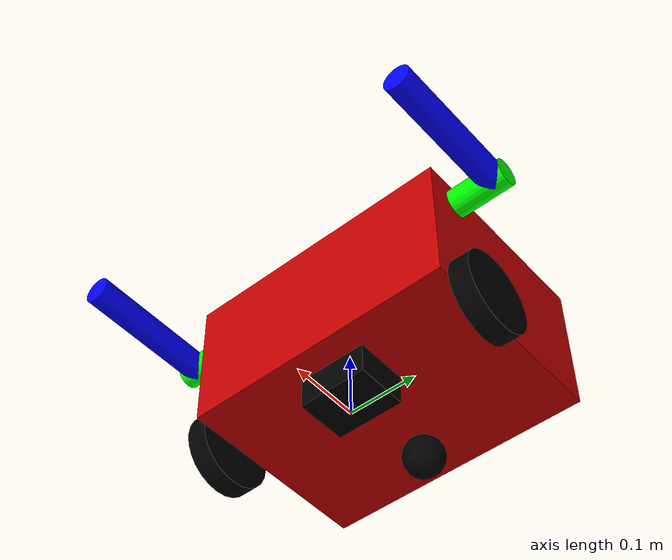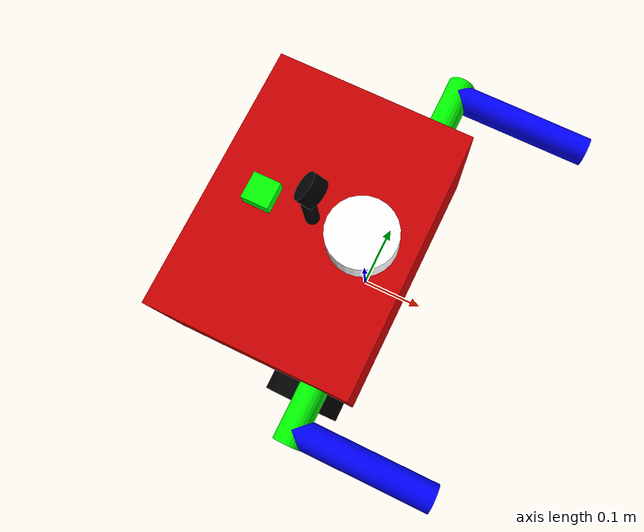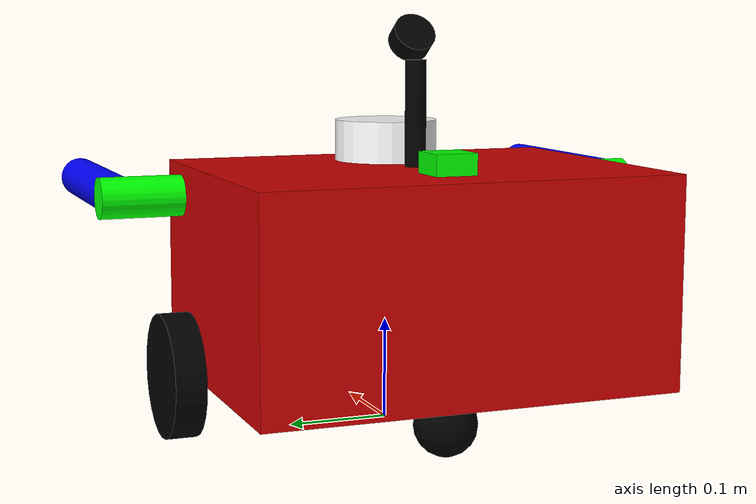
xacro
<?xml version="1.0"?>
<robot name="ddrive_robot" xmlns:xacro="http://ros.org/wiki/xacro">

  <xacro:arg name="namespace" default="" />
  <xacro:arg name="battery_x_factor" default="1.0" />

  <xacro:include filename="$(find marrtino_gazebo)/urdf/marrtino_base.urdf.xacro" />

  <xacro:property name="wheel_r" value="0.06" />
  <xacro:property name="wheel_max_velocity" value="${1 / wheel_r}" /> <!-- 1/r rad/s -> 1 m/s -->

  <xacro:property name="arm_lower_limit" value="${-5*pi/4}" />
  <xacro:property name="arm_upper_limit" value="${pi/4}" />
  <xacro:property name="arm_max_effort" value="100" />
  <xacro:property name="arm_max_velocity" value="1.0" />

  <xacro:marrtino_base battery_x_factor="$(arg battery_x_factor)" />

  <xacro:marrtino_sensors />

  <xacro:marrtino_arms />

  <gazebo>
    <!-- Joint state publisher -->
    <plugin filename="gz_ros2_control-system" name="gz_ros2_control::GazeboSimROS2ControlPlugin">
      <ros>
        <namespace>$(arg namespace)</namespace>
      </ros>
      <parameters>$(find gz_ros2_control_demos)/config/diff_drive_controller.yaml</parameters>
    </plugin>

    <plugin filename="gz-sim-imu-system"
      name="gz::sim::systems::Imu">
    </plugin>
    <plugin
        filename="gz-sim-pose-publisher-system"
        name="gz::sim::systems::PosePublisher">
        <use_pose_vector_msg>false</use_pose_vector_msg>
        <publish_model_pose>true</publish_model_pose>
        <publish_nested_model_pose>true</publish_nested_model_pose>
    </plugin>

  </gazebo>

  <gazebo reference="imu_link">
    <sensor name="imu" type="imu">
      <always_on>1</always_on>
      <update_rate>10</update_rate>
      <visualize>true</visualize>
      <topic>imu</topic>
      <enable_metrics>true</enable_metrics>
    </sensor>
  </gazebo>

  <gazebo reference="lidar_link">
    <sensor name="lidar" type="gpu_lidar">
      <pose relative_to='lidar_link'>0 0 0.05 0 0 0</pose>
      <always_on>1</always_on>
      <update_rate>10</update_rate>
      <visualize>true</visualize>
      <topic>scan</topic>
      <gz_frame_id>lidar_link</gz_frame_id>  <!-- ignore warning not defined in SDF -->
      <ray>
        <scan>
            <horizontal>
                <samples>640</samples>
                <resolution>1</resolution>
                <min_angle>${-pi*5/8}</min_angle>
                <max_angle>${pi*5/8}</max_angle>
            </horizontal>
            <vertical>
                <samples>1</samples>
                <resolution>0.01</resolution>
                <min_angle>0</min_angle>
                <max_angle>0</max_angle>
            </vertical>
        </scan>
        <range>
            <min>0.05</min>
            <max>10.0</max>
            <resolution>0.01</resolution>
        </range>
      </ray>
    </sensor>
  </gazebo>

  <gazebo reference="camera_optical_link">
    <sensor name="camera" type="camera">
      <camera>
        <horizontal_fov>2.0</horizontal_fov>
        <image>
          <width>640</width>
          <height>480</height>
          <format>R8G8B8</format>
        </image>
        <clip>
          <near>0.001</near>
          <far>15</far>
        </clip>
        <noise>
          <type>gaussian</type>
          <!-- Noise is sampled independently per pixel on each frame.
               That pixel's noise value is added to each of its color
               channels, which at that point lie in the range [0,1]. -->
          <mean>0.0</mean>
          <stddev>0.007</stddev>
        </noise>
        <camera_info_topic>camera/camera_info</camera_info_topic>
      </camera>
      <always_on>1</always_on>
      <update_rate>10</update_rate>
      <visualize>true</visualize>
      <topic>camera/image</topic>
    </sensor>
  </gazebo>

  <ros2_control name="GazeboSimSystem" type="system">
    <hardware>
      <plugin>gz_ros2_control/GazeboSimSystem</plugin>
    </hardware>
    <joint name="left_wheel_joint">
      <command_interface name="velocity">
        <param name="min">${-wheel_max_velocity}</param>
        <param name="max">${wheel_max_velocity}</param>
      </command_interface>
      <state_interface name="position"/>
      <state_interface name="velocity"/>
    </joint>
    <joint name="right_wheel_joint">
      <command_interface name="velocity">
        <param name="min">${-wheel_max_velocity}</param>
        <param name="max">${wheel_max_velocity}</param>
      </command_interface>
      <state_interface name="position"/>
      <state_interface name="velocity"/>
    </joint>
    <joint name="left_arm_joint">
      <command_interface name="effort">
        <param name="min">${-arm_max_effort}</param>
        <param name="max">${arm_max_effort}</param>
      </command_interface>
      <command_interface name="velocity">
        <param name="min">${-arm_max_velocity}</param>
        <param name="max">${arm_max_velocity}</param>
      </command_interface>
      <command_interface name="position">
        <param name="min">${arm_lower_limit}</param>
        <param name="max">${arm_upper_limit}</param>
      </command_interface>
      <state_interface name="position"/>
      <state_interface name="velocity"/>
    </joint>
    <joint name="right_arm_joint">
      <command_interface name="effort">
        <param name="min">${-arm_max_effort}</param>
        <param name="max">${arm_max_effort}</param>
      </command_interface>
      <command_interface name="velocity">
        <param name="min">${-arm_max_velocity}</param>
        <param name="max">${arm_max_velocity}</param>
      </command_interface>
      <command_interface name="position">
        <param name="min">${arm_lower_limit}</param>
        <param name="max">${arm_upper_limit}</param>
      </command_interface>
      <state_interface name="position"/>
      <state_interface name="velocity"/>
    </joint>
  </ros2_control>

</robot>

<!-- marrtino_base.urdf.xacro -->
<robot xmlns:xacro="http://ros.org/wiki/xacro">

  <xacro:arg name="namespace" default="" />

  <material name="orange"><color rgba="1.0 0.33 0.0 1.0"/></material>
  <material name="red"><color rgba="0.8 0 0 1"/></material>
  <material name="green"><color rgba="0 1 0 1"/></material>
  <material name="blue"><color rgba="0 0 1 1"/></material>
  <material name="black"><color rgba="0 0 0 1.0"/></material>
  <material name="grey"><color rgba="0.7 0.7 0.7 1.0"/></material>
  <material name="white"><color rgba="1 1 1 1.0"/></material>

  <xacro:include filename="$(find marrtino_gazebo)/urdf/inertia.xacro" />

  <xacro:property name="base_w" value="0.40" />
  <xacro:property name="base_l" value="0.30" />
  <xacro:property name="base_h" value="0.20" />

  <xacro:macro name="marrtino_base" params="battery_x_factor">

      <xacro:property name="wheel_l" value="0.03" />

      <xacro:property name="wheel_friction" value="0.01" />
      <xacro:property name="wheel_damping" value="0.05" />
      <xacro:property name="wheel_max_effort" value="100.0" />

      <xacro:property name="battery_x" value="${battery_x_factor*base_l/4}" />

      <link name="base_footprint" />

      <link name="base_link">
        <visual>
            <geometry>
                <box size="${base_l} ${base_w} ${base_h}"/>
            </geometry>
            <origin xyz="0.0 0.0 0.0" rpy="0.0 0.0 0.0"/>
            <material name="red"/>
        </visual>
        <collision>
            <geometry>
                <box size="${base_l} ${base_w} ${base_h}"/>
            </geometry>
            <origin xyz="0.0 0.0 0.0" rpy="0.0 0.0 0.0"/>
        </collision>
        <xacro:box_inertial mass="0.2" x_dim="${base_l}" y_dim="${base_w}" z_dim="${base_h}"/>
      </link>

      <!-- to balance weight on the bottom and between the wheels -->
      <link name="battery_link">
        <visual>
            <geometry>
                <box size="${base_l/4} ${base_w/4} ${base_h/4}"/>
            </geometry>
            <origin xyz="0.0 0.0 0.0" rpy="0.0 0.0 0.0"/>
            <material name="black"/>
        </visual>
        <collision>
            <geometry>
                <box size="${base_l/4} ${base_w/4} ${base_h/4}"/>
            </geometry>
            <origin xyz="0.0 0.0 0.0" rpy="0.0 0.0 0.0"/>
        </collision>
        <xacro:box_inertial mass="0.3" x_dim="${base_l/4}" y_dim="${base_w/4}" z_dim="${base_h/4}"/>
      </link>

      <link name="left_wheel">
        <visual>
            <geometry>
                <cylinder radius="${wheel_r}" length="${wheel_l}"/>
            </geometry>
            <origin xyz="0.0 0.0 0.0" rpy="1.57 0.0 0.0"/>
            <material name="black"/>
        </visual>
        <collision>
            <geometry>
                <cylinder radius="${wheel_r}" length="${wheel_l}"/>
            </geometry>
            <origin xyz="0.0 0.0 0.0" rpy="1.57 0.0 0.0"/>
            <surface>
              <friction>
                <ode>
                  <mu>1.0</mu>
                  <mu2>1.0</mu2>
                </ode>
                <torsional>
                  <ode/>
                </torsional>
              </friction>
            </surface>
        </collision>
        <xacro:cylinder_inertial mass="0.3" radius="${wheel_r}" length="${wheel_l}"/>
      </link>

      <link name="right_wheel">
        <visual>
            <geometry>
                <cylinder radius="${wheel_r}" length="${wheel_l}"/>
            </geometry>
            <origin xyz="0.0 0.0 0.0" rpy="1.57 0.0 0.0"/>
            <material name="black"/>
        </visual>
        <collision>
            <geometry>
                <cylinder radius="${wheel_r}" length="${wheel_l}"/>
            </geometry>
            <origin xyz="0.0 0.0 0.0" rpy="1.57 0.0 0.0"/>
            <surface>
              <friction>
                <ode>
                  <mu>1.0</mu>
                  <mu2>1.0</mu2>
                </ode>
                <torsional>
                  <ode/>
                </torsional>
              </friction>
            </surface>
        </collision>
        <xacro:cylinder_inertial mass="0.3" radius="${wheel_r}" length="${wheel_l}"/>
      </link>

      <link name="caster_wheel">
        <visual>
            <geometry>
                <sphere radius="${wheel_r/2}"/>
            </geometry>
            <origin xyz="0.0 0.0 0.0" rpy="0.0 0.0 0.0"/>
            <material name="black"/>
        </visual>
        <collision>
            <geometry>
                <sphere radius="${wheel_r/2}"/>
            </geometry>
            <origin xyz="0.0 0.0 0.0" rpy="0.0 0.0 0.0"/>
            <surface>
              <friction>
                <ode>
                  <mu>0.001</mu>
                  <mu2>0.001</mu2>
                </ode>
                <torsional>
                  <ode/>
                </torsional>
              </friction>
            </surface>
        </collision>
        <xacro:sphere_inertial mass="0.1" radius="${wheel_r/2}" />
      </link>

      <joint name="base_joint" type="fixed">
        <parent link="base_footprint"/>
        <child link="base_link"/>
        <origin xyz="${-base_l/4} 0.0 ${base_h/2+wheel_r}" rpy="0.0 0.0 0.0"/>
      </joint>

      <joint name="battery_joint" type="fixed">
        <parent link="base_link"/>
        <child link="battery_link"/>
        <origin xyz="${battery_x} 0.0 ${-wheel_r*2}" rpy="0.0 0.0 0.0"/>
      </joint>

      <joint name="left_wheel_joint" type="continuous">
        <parent link="base_link"/>
        <child link="left_wheel"/>
        <origin xyz="${base_l/4} ${base_w/2+wheel_l/2} ${-base_h/2}" rpy="0 0.0 0.0"/>
        <axis xyz="0.0 1.0 0.0"/>
        <dynamics damping="${wheel_damping}" friction="${wheel_friction}"/>
        <limit effort="${wheel_max_effort}" velocity="${wheel_max_velocity}"/>
      </joint>

      <joint name="right_wheel_joint" type="continuous">
        <parent link="base_link"/>
        <child link="right_wheel"/>
        <origin xyz="${base_l/4} ${-base_w/2-wheel_l/2} ${-base_h/2}" rpy="0 0.0 0.0"/>
        <axis xyz="0.0 1.0 0.0"/>
        <dynamics damping="${wheel_damping}" friction="${wheel_friction}"/>
        <limit effort="${wheel_max_effort}" velocity="${wheel_max_velocity}"/>
      </joint>

      <joint name="caster_wheel_joint" type="fixed">
        <parent link="base_link"/>
        <child link="caster_wheel"/>
        <origin xyz="${-base_l/4} 0.0 ${-base_h/2-wheel_r/2}" rpy="0.0 0.0 0.0"/>
      </joint>

  </xacro:macro>

  <xacro:macro name="marrtino_sensors">

      <link name="imu_link">
        <visual>
          <origin rpy="0 0 0" xyz="0 0 0.0"/>
          <geometry>
            <box size="0.04 0.04 0.02"/>
          </geometry>
          <material name="green"/>
        </visual>
      </link>

      <link name="camera_optical_link" />

      <link name="camera_link">
        <visual>
          <origin xyz="0 0 0.05" rpy="0 0 0" />
          <geometry>
            <cylinder radius="0.01" length="0.10"/>
          </geometry>
          <material name="black"/>
        </visual>
        <visual>
          <origin xyz="0.01 0 ${0.10+0.02}" rpy="0 ${pi/2+0.6} 0" />
          <geometry>
            <cylinder radius="0.02" length="0.02"/>
          </geometry>
          <material name="black"/>
        </visual>
      </link>

      <link name="lidar_link">
        <visual>
            <geometry>
                <cylinder radius="0.05" length="0.04"/>
            </geometry>
            <origin xyz="0.0 0.0 0.0" rpy="0.0 0.0 0.0"/>
            <material name="white"/>
        </visual>
      </link>

      <joint name="imu_joint" type="fixed">
        <parent link="base_link"/>
        <child link="imu_link"/>
        <origin xyz="${-base_l/4} 0.0 ${base_h/2+0.01}" rpy="0.0 0.0 0.0"/>
      </joint>

      <joint name="camera_joint" type="fixed">
        <parent link="base_link"/>
        <child link="camera_link"/>
        <origin xyz="0 0.0 ${base_h/2}" rpy="0.0 0.0 0.0"/>
      </joint>

      <joint name="camera_optical_joint" type="fixed">
        <parent link="camera_link"/>
        <child link="camera_optical_link"/>
        <origin xyz="0.02 0 ${0.10+0.02}" rpy="0 0.6 0"/>
      </joint>

      <joint name="base_lidar_joint" type="fixed">
        <parent link="base_link"/>
        <child link="lidar_link"/>
        <origin xyz="${base_l/4} 0.0 ${base_h/2+0.02}" rpy="0.0 0.0 0.0"/>
      </joint>

  </xacro:macro>

  <xacro:macro name="marrtino_arms">

      <xacro:property name="arm_radius" value="0.02" />
      <xacro:property name="arm_length" value="0.2" />
      <xacro:property name="arm_mass" value="0.05" />

      <xacro:property name="arm_friction" value="0.01" />
      <xacro:property name="arm_damping" value="0.02" />

      <link name="left_arm_body">
        <visual>
            <geometry>
                <cylinder radius="${arm_radius}" length="${2*arm_radius+0.04}"/>
            </geometry>
            <origin xyz="0.0 0.0 0.0" rpy="${pi/2} 0.0 0.0"/>
            <material name="green"/>
        </visual>
        <collision>
            <geometry>
                <cylinder radius="${arm_radius}" length="0.01"/>
            </geometry>
            <origin xyz="0.0 0.0 0.0" rpy="${pi/2} 0.0 0.0"/>
        </collision>
        <xacro:cylinder_inertial mass="${arm_mass/10}" radius="${arm_radius}" length="0.01"/>
      </link>

      <link name="left_arm">
        <visual>
            <geometry>
                <cylinder radius="${arm_radius}" length="${arm_length}"/>
            </geometry>
            <origin xyz="0.0 0.0 0.0" rpy="0.0 ${pi/2} 0.0"/>
            <material name="blue"/>
        </visual>
        <collision>
            <geometry>
                <cylinder radius="${arm_radius}" length="${arm_length}"/>
            </geometry>
            <origin xyz="0.0 0.0 0.0" rpy="0.0 ${pi/2} 0.0"/>
        </collision>
        <xacro:cylinder_inertial mass="${arm_mass}" radius="${arm_radius}" length="${arm_length}"/>
      </link>

      <link name="right_arm_body">
        <visual>
            <geometry>
                <cylinder radius="${arm_radius}" length="${2*arm_radius+0.04}"/>
            </geometry>
            <origin xyz="0.0 0.0 0.0" rpy="${pi/2} 0.0 0.0"/>
            <material name="green"/>
        </visual>
        <collision>
            <geometry>
                <cylinder radius="${arm_radius}" length="0.01"/>
            </geometry>
            <origin xyz="0.0 0.0 0.0" rpy="${pi/2} 0.0 0.0"/>
        </collision>
        <xacro:cylinder_inertial mass="${arm_mass/10}" radius="${arm_radius}" length="0.01"/>
      </link>

      <link name="right_arm">
        <visual>
            <geometry>
                <cylinder radius="${arm_radius}" length="${arm_length}"/>
            </geometry>
            <origin xyz="0.0 0.0 0.0" rpy="0.0 ${pi/2} 0.0"/>
            <material name="blue"/>
        </visual>
        <collision>
            <geometry>
                <cylinder radius="${arm_radius}" length="${arm_length}"/>
            </geometry>
            <origin xyz="0.0 0.0 0.0" rpy="0.0 ${pi/2} 0.0"/>
        </collision>
        <xacro:cylinder_inertial mass="${arm_mass}" radius="${arm_radius}" length="${arm_length}"/>
      </link>

      <joint name="left_arm_joint" type="revolute">
        <parent link="base_link"/>
        <child link="left_arm_body"/>
        <origin xyz="0.1 ${0.221+arm_radius} 0.07" rpy="0 0 0"/>
        <axis xyz="0.0 1.0 0.0"/>
        <dynamics friction="${arm_friction}" damping="${arm_damping}" />
        <limit lower="${arm_lower_limit}" upper="${arm_upper_limit}"
            effort="${arm_max_effort}" velocity="${arm_max_velocity}"/>
      </joint>

      <joint name="left_arm_body_joint" type="fixed">
        <parent link="left_arm_body"/>
        <child link="left_arm"/>
        <origin xyz="${arm_length/2} 0.02 0.0" rpy="0 0.0 0.0"/>
      </joint>

      <joint name="right_arm_joint" type="revolute">
        <parent link="base_link"/>
        <child link="right_arm_body"/>
        <origin xyz="0.1 ${-(0.221+arm_radius)} 0.07" rpy="0 0 0"/>
        <axis xyz="0.0 1.0 0.0"/>
        <dynamics friction="${arm_friction}" damping="${arm_damping}" />
        <limit lower="${arm_lower_limit}" upper="${arm_upper_limit}"
            effort="${arm_max_effort}" velocity="${arm_max_velocity}"/>
      </joint>

      <joint name="right_arm_body_joint" type="fixed">
        <parent link="right_arm_body"/>
        <child link="right_arm"/>
        <origin xyz="${arm_length/2} -0.02 0.0" rpy="0 0.0 0.0"/>
      </joint>

  </xacro:macro>

</robot>

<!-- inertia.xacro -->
<robot xmlns:xacro="http://ros.org/wiki/xacro">

  <xacro:macro name="sphere_inertial" params="mass radius">
    <inertial>
      <origin xyz="0 0 0" rpy="0 0 0"/> <mass value="${mass}"/>
      <inertia
        ixx="${(2/5) * mass * (radius*radius)}"
        ixy="0.0"
        ixz="0.0"
        iyy="${(2/5) * mass * (radius*radius)}"
        iyz="0.0"
        izz="${(2/5) * mass * (radius*radius)}"
      />
    </inertial>
  </xacro:macro>

  <xacro:macro name="sphere_inertial_roll" params="mass radius roll">
    <inertial>
      <origin xyz="0 0 0" rpy="${roll} 0 0"/> <mass value="${mass}"/>
      <inertia
        ixx="${(2/5) * mass * (radius*radius)}"
        ixy="0.0"
        ixz="0.0"
        iyy="${(2/5) * mass * (radius*radius)}"
        iyz="0.0"
        izz="${(2/5) * mass * (radius*radius)}"
      />
    </inertial>
  </xacro:macro>

  <xacro:macro name="cylinder_inertial" params="mass radius length">
    <inertial>
      <origin xyz="0 0 0" rpy="0 0 0"/>
      <mass value="${mass}"/>
      <inertia
        ixx="${(1/12) * mass * (3*radius*radius + length*length)}"
        ixy="0.0"
        ixz="0.0"
        iyy="${(1/12) * mass * (3*radius*radius + length*length)}"
        iyz="0.0"
        izz="${(1/2) * mass * (radius*radius)}"
      />
    </inertial>
  </xacro:macro>

  <xacro:macro name="cylinder_inertial_roll" params="mass radius length roll">
    <inertial>
      <origin xyz="0 0 0" rpy="${roll} 0 0"/>
      <mass value="${mass}"/>
      <inertia
        ixx="${(1/12) * mass * (3*radius*radius + length*length)}"
        ixy="0.0"
        ixz="0.0"
        iyy="${(1/12) * mass * (3*radius*radius + length*length)}"
        iyz="0.0"
        izz="${(1/2) * mass * (radius*radius)}"
      />
    </inertial>
  </xacro:macro>

  <xacro:macro name="box_inertial" params="mass x_dim y_dim z_dim">
    <inertial>
      <origin xyz="0 0 0" rpy="0 0 0"/>
      <mass value="${mass}"/>
      <inertia
        ixx="${(1/12) * mass * (y_dim*y_dim + z_dim*z_dim)}"
        ixy="0.0"
        ixz="0.0"
        iyy="${(1/12) * mass * (x_dim*x_dim + z_dim*z_dim)}"
        iyz="0.0"
        izz="${(1/12) * mass * (x_dim*x_dim + y_dim*y_dim)}"
      />
    </inertial>
  </xacro:macro>

</robot>
